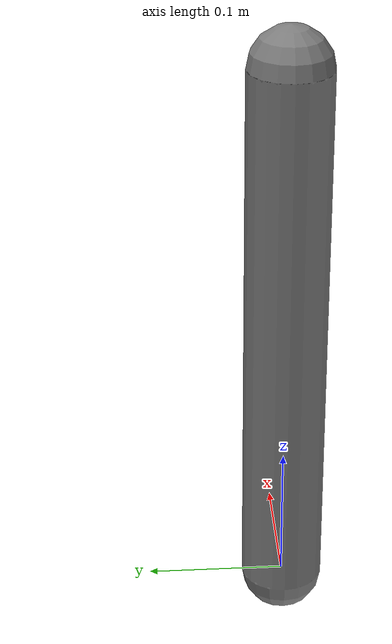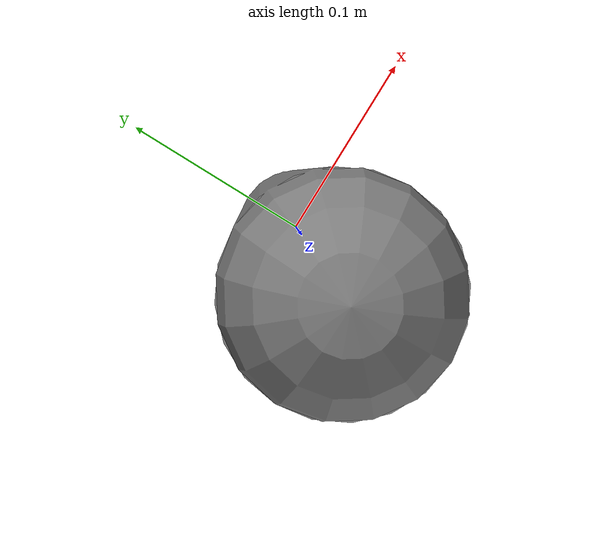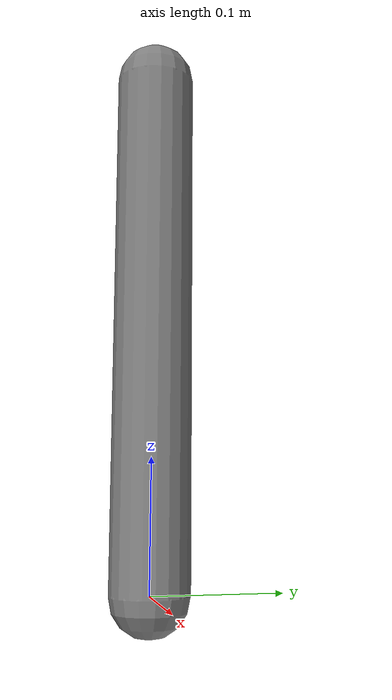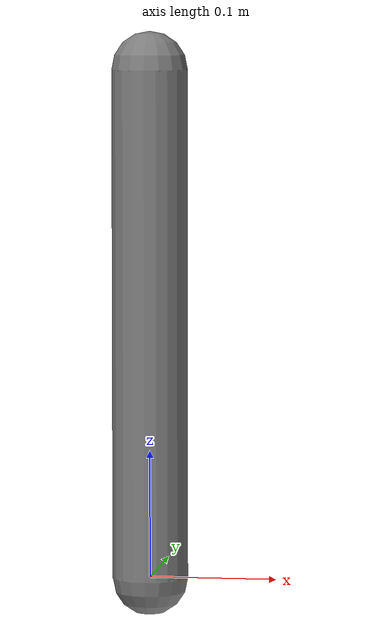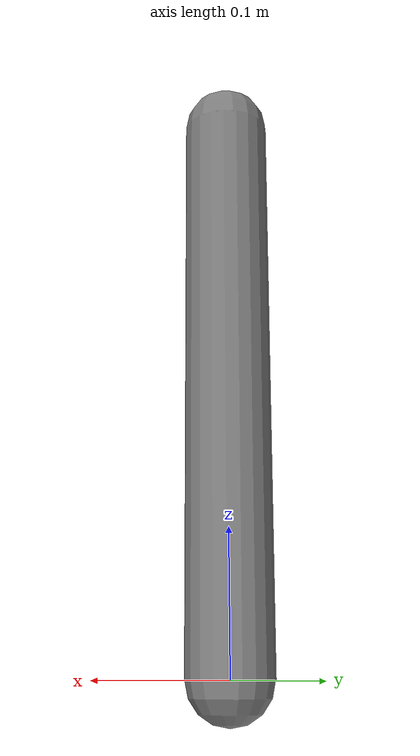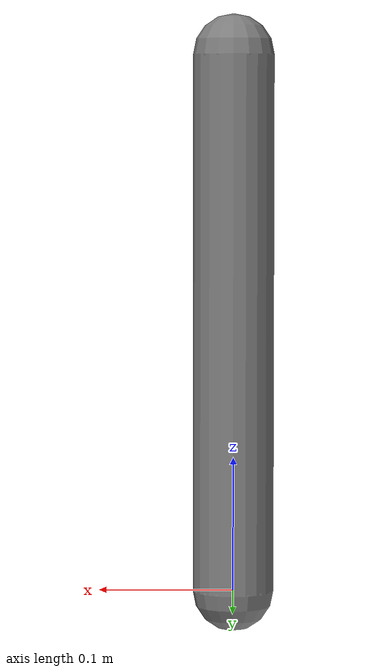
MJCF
<mujoco model="orientations">
  <compiler angle="degree"/>
  <worldbody>
    <body name="by_quat" pos="0 0 0" quat="0.7071067811865476 0 0 0.7071067811865476">
      <inertial mass="1" diaginertia="0.1 0.1 0.1"/>
      <joint name="jq" type="hinge" axis="0 0 1"/>
    </body>
    <body name="by_euler" pos="0 0 0" euler="0 0 90">
      <inertial mass="1" diaginertia="0.1 0.1 0.1"/>
      <joint name="je" type="hinge" axis="0 0 1"/>
    </body>
    <body name="by_axisangle" pos="0 0 0" axisangle="0 0 1 90">
      <inertial mass="1" diaginertia="0.1 0.1 0.1"/>
      <joint name="ja" type="hinge" axis="0 0 1"/>
    </body>
    <body name="by_zaxis" pos="0 0 0" zaxis="1 0 0">
      <inertial mass="1" diaginertia="0.1 0.1 0.1"/>
      <joint name="jz" type="hinge" axis="0 0 1"/>
    </body>
    <body name="by_xyaxes" pos="0 0 0" xyaxes="0 1 0 -1 0 0">
      <inertial mass="1" diaginertia="0.1 0.1 0.1"/>
      <joint name="jx" type="hinge" axis="0 0 1"/>
    </body>
    <body name="capsule_fromto" pos="0 0 0">
      <inertial mass="1" diaginertia="0.1 0.1 0.1"/>
      <joint name="jf" type="hinge" axis="0 1 0"/>
      <geom name="g_fromto" type="capsule" fromto="0 0 0 0 0 0.4" size="0.03"/>
    </body>
  </worldbody>
</mujoco>
